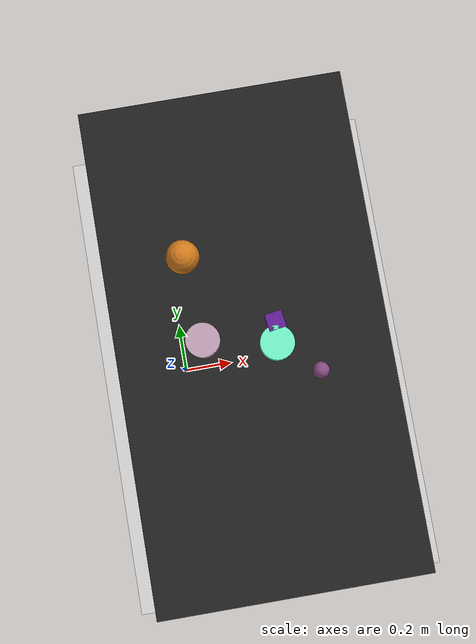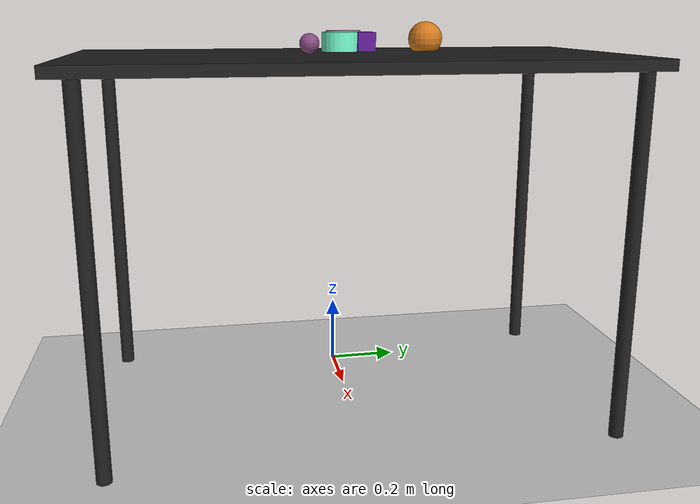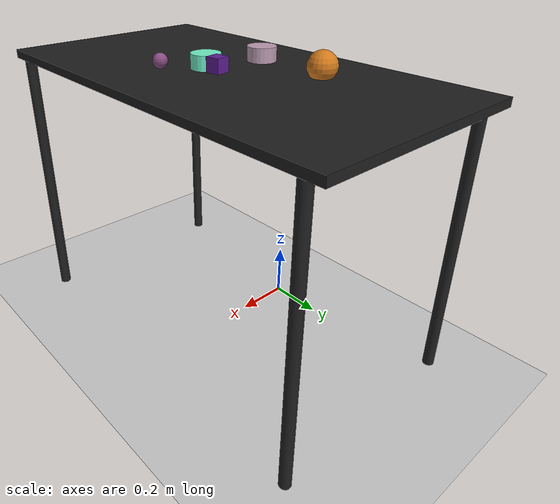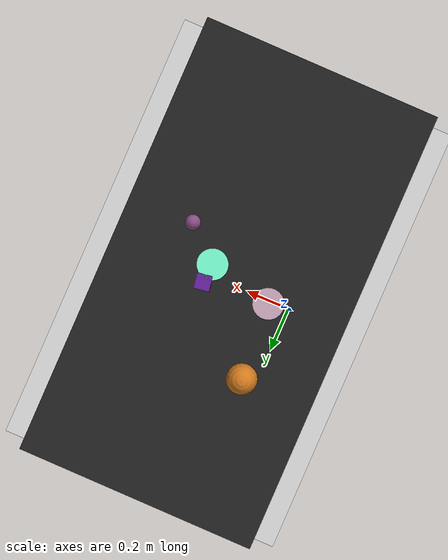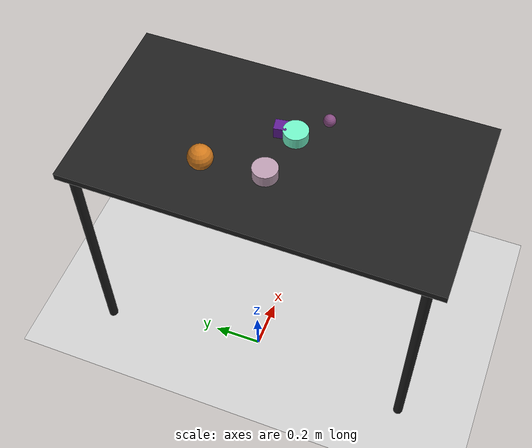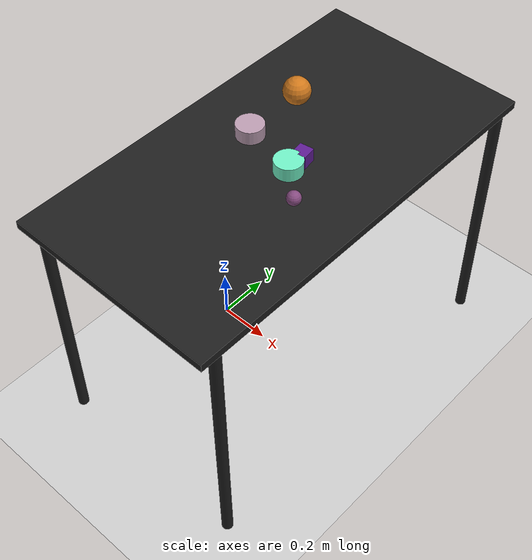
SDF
<?xml version="1.0" ?>
<sdf version="1.6">
  <world name="arm_world">
    <plugin filename="gz-sim-physics-system" name="gz::sim::systems::Physics">
      <engine>
        <filename>libgz-physics-bullet-featherstone-plugin.so</filename>
      </engine>
    </plugin>
    <plugin filename="gz-sim-user-commands-system" name="gz::sim::systems::UserCommands"/>
    <plugin filename="gz-sim-scene-broadcaster-system" name="gz::sim::systems::SceneBroadcaster"/>
    <plugin filename="gz-sim-sensors-system" name="gz::sim::systems::Sensors">
      <render_engine>ogre2</render_engine>
    </plugin>
    <gravity>0.0 0.0 -9.8</gravity>
    <scene>
      <shadows>false</shadows>
    </scene>
    <gui>
      <camera name="user_camera">
        <pose>0.75 -0.75 1.4 0 0.29 2.21</pose>
      </camera>
    </gui>
    <include>
      <uri>https://fuel.gazebosim.org/1.0/OpenRobotics/models/Sun</uri>
    </include>
    <model name="table">
      <static>true</static>
      <include>
        <uri>model://table</uri>
      </include>
      <pose>0.29 0 0 0 0 1.5708</pose>
    </model>
    <model name="ground_plane">
      <static>true</static>
      <link name="link">
        <collision name="collision">
          <geometry>
            <plane>
              <normal>0 0 1</normal>
            </plane>
          </geometry>
          <surface>
            <friction>
              <ode>
                <mu>1.0</mu>
                <mu2>1.0</mu2>
              </ode>
            </friction>
          </surface>
        </collision>
        <visual name="visual">
          <geometry>
            <plane>
              <normal>0 0 1</normal>
              <size>100 100</size>
            </plane>
          </geometry>
          <material>
            <ambient>0.8 0.8 0.8 1</ambient>
            <diffuse>0.8 0.8 0.8 1</diffuse>
            <specular>0.8 0.8 0.8 1</specular>
          </material>
        </visual>
      </link>
    </model>
    <model name="cube_m_0">
      <pose>0.364 0.029 1.05 0 0 0.15</pose>
      <link name="cube_m_0_link">
        <inertial>
          <mass>0.05</mass>
          <inertia>
            <ixx>2.04e-7</ixx>
            <iyy>2.04e-7</iyy>
            <izz>3.9e-8</izz>
            <ixy>0</ixy>
            <ixz>0</ixz>
            <iyz>0</iyz>
          </inertia>
        </inertial>
        <collision name="cube_m_0_collision">
          <geometry>
            <box>
              <size>0.05 0.05 0.05</size>
            </box>
          </geometry>
          <surface>
            <friction>
              <ode>
                <mu>0.8</mu>
                <mu2>0.8</mu2>
                <fdir1>0 0 1</fdir1>
                <slip1>0.001</slip1>
                <slip2>0.001</slip2>
              </ode>
              <torsional>
                <coefficient>0.1</coefficient>
                <surface_radius>0.015</surface_radius>
                <use_patch_radius>true</use_patch_radius>
              </torsional>
            </friction>
            <contact>
              <ode>
                <kp>1e5</kp>
                <kd>10</kd>
                <max_vel>0.1</max_vel>
                <min_depth>0.001</min_depth>
                <soft_cfm>0.01</soft_cfm>
                <soft_erp>0.2</soft_erp>
              </ode>
            </contact>
            <bounce>
              <restitution_coefficient>0.2</restitution_coefficient>
              <threshold>0.01</threshold>
            </bounce>
          </surface>
        </collision>
        <visual name="cube_m_0_visual">
          <geometry>
            <box>
              <size>0.05 0.05 0.05</size>
            </box>
          </geometry>
          <material>
            <ambient>0.37 0.11 0.58 1</ambient>
            <diffuse>0.37 0.11 0.58 1</diffuse>
          </material>
        </visual>
        <velocity_decay>
          <linear>1</linear>
          <angular>1</angular>
        </velocity_decay>
      </link>
    </model>
    <model name="sphere_m_1">
      <pose>0.469 -0.13 1.05 0 0 1.68</pose>
      <link name="sphere_m_1_link">
        <inertial>
          <mass>0.05</mass>
          <inertia>
            <ixx>2.04e-7</ixx>
            <iyy>2.04e-7</iyy>
            <izz>3.9e-8</izz>
            <ixy>0</ixy>
            <ixz>0</ixz>
            <iyz>0</iyz>
          </inertia>
        </inertial>
        <collision name="sphere_m_1_collision">
          <geometry>
            <sphere>
              <radius>0.025</radius>
            </sphere>
          </geometry>
          <surface>
            <friction>
              <ode>
                <mu>0.8</mu>
                <mu2>0.8</mu2>
                <fdir1>0 0 1</fdir1>
                <slip1>0.001</slip1>
                <slip2>0.001</slip2>
              </ode>
              <torsional>
                <coefficient>0.1</coefficient>
                <surface_radius>0.015</surface_radius>
                <use_patch_radius>true</use_patch_radius>
              </torsional>
            </friction>
            <contact>
              <ode>
                <kp>1e5</kp>
                <kd>10</kd>
                <max_vel>0.1</max_vel>
                <min_depth>0.001</min_depth>
                <soft_cfm>0.01</soft_cfm>
                <soft_erp>0.2</soft_erp>
              </ode>
            </contact>
            <bounce>
              <restitution_coefficient>0.2</restitution_coefficient>
              <threshold>0.01</threshold>
            </bounce>
          </surface>
        </collision>
        <visual name="sphere_m_1_visual">
          <geometry>
            <sphere>
              <radius>0.025</radius>
            </sphere>
          </geometry>
          <material>
            <ambient>0.52 0.29 0.5 1</ambient>
            <diffuse>0.52 0.29 0.5 1</diffuse>
          </material>
        </visual>
        <velocity_decay>
          <linear>1</linear>
          <angular>1</angular>
        </velocity_decay>
      </link>
    </model>
    <model name="cylinder_l_2">
      <pose>0.151 0.01 1.05 0 0 4.13</pose>
      <link name="cylinder_l_2_link">
        <inertial>
          <mass>0.05</mass>
          <inertia>
            <ixx>2.04e-7</ixx>
            <iyy>2.04e-7</iyy>
            <izz>3.9e-8</izz>
            <ixy>0</ixy>
            <ixz>0</ixz>
            <iyz>0</iyz>
          </inertia>
        </inertial>
        <collision name="cylinder_l_2_collision">
          <geometry>
            <cylinder>
              <radius>0.05</radius>
              <length>0.05</length>
            </cylinder>
          </geometry>
          <surface>
            <friction>
              <ode>
                <mu>0.8</mu>
                <mu2>0.8</mu2>
                <fdir1>0 0 1</fdir1>
                <slip1>0.001</slip1>
                <slip2>0.001</slip2>
              </ode>
              <torsional>
                <coefficient>0.1</coefficient>
                <surface_radius>0.015</surface_radius>
                <use_patch_radius>true</use_patch_radius>
              </torsional>
            </friction>
            <contact>
              <ode>
                <kp>1e5</kp>
                <kd>10</kd>
                <max_vel>0.1</max_vel>
                <min_depth>0.001</min_depth>
                <soft_cfm>0.01</soft_cfm>
                <soft_erp>0.2</soft_erp>
              </ode>
            </contact>
            <bounce>
              <restitution_coefficient>0.2</restitution_coefficient>
              <threshold>0.01</threshold>
            </bounce>
          </surface>
        </collision>
        <visual name="cylinder_l_2_visual">
          <geometry>
            <cylinder>
              <radius>0.05</radius>
              <length>0.05</length>
            </cylinder>
          </geometry>
          <material>
            <ambient>0.73 0.61 0.69 1</ambient>
            <diffuse>0.73 0.61 0.69 1</diffuse>
          </material>
        </visual>
        <velocity_decay>
          <linear>1</linear>
          <angular>1</angular>
        </velocity_decay>
      </link>
    </model>
    <model name="cylinder_l_3">
      <pose>0.359 -0.033 1.05 0 0 1.66</pose>
      <link name="cylinder_l_3_link">
        <inertial>
          <mass>0.05</mass>
          <inertia>
            <ixx>2.04e-7</ixx>
            <iyy>2.04e-7</iyy>
            <izz>3.9e-8</izz>
            <ixy>0</ixy>
            <ixz>0</ixz>
            <iyz>0</iyz>
          </inertia>
        </inertial>
        <collision name="cylinder_l_3_collision">
          <geometry>
            <cylinder>
              <radius>0.05</radius>
              <length>0.05</length>
            </cylinder>
          </geometry>
          <surface>
            <friction>
              <ode>
                <mu>0.8</mu>
                <mu2>0.8</mu2>
                <fdir1>0 0 1</fdir1>
                <slip1>0.001</slip1>
                <slip2>0.001</slip2>
              </ode>
              <torsional>
                <coefficient>0.1</coefficient>
                <surface_radius>0.015</surface_radius>
                <use_patch_radius>true</use_patch_radius>
              </torsional>
            </friction>
            <contact>
              <ode>
                <kp>1e5</kp>
                <kd>10</kd>
                <max_vel>0.1</max_vel>
                <min_depth>0.001</min_depth>
                <soft_cfm>0.01</soft_cfm>
                <soft_erp>0.2</soft_erp>
              </ode>
            </contact>
            <bounce>
              <restitution_coefficient>0.2</restitution_coefficient>
              <threshold>0.01</threshold>
            </bounce>
          </surface>
        </collision>
        <visual name="cylinder_l_3_visual">
          <geometry>
            <cylinder>
              <radius>0.05</radius>
              <length>0.05</length>
            </cylinder>
          </geometry>
          <material>
            <ambient>0.44 0.94 0.77 1</ambient>
            <diffuse>0.44 0.94 0.77 1</diffuse>
          </material>
        </visual>
        <velocity_decay>
          <linear>1</linear>
          <angular>1</angular>
        </velocity_decay>
      </link>
    </model>
    <model name="sphere_l_4">
      <pose>0.132 0.26 1.05 0 0 0.08</pose>
      <link name="sphere_l_4_link">
        <inertial>
          <mass>0.05</mass>
          <inertia>
            <ixx>2.04e-7</ixx>
            <iyy>2.04e-7</iyy>
            <izz>3.9e-8</izz>
            <ixy>0</ixy>
            <ixz>0</ixz>
            <iyz>0</iyz>
          </inertia>
        </inertial>
        <collision name="sphere_l_4_collision">
          <geometry>
            <sphere>
              <radius>0.05</radius>
            </sphere>
          </geometry>
          <surface>
            <friction>
              <ode>
                <mu>0.8</mu>
                <mu2>0.8</mu2>
                <fdir1>0 0 1</fdir1>
                <slip1>0.001</slip1>
                <slip2>0.001</slip2>
              </ode>
              <torsional>
                <coefficient>0.1</coefficient>
                <surface_radius>0.015</surface_radius>
                <use_patch_radius>true</use_patch_radius>
              </torsional>
            </friction>
            <contact>
              <ode>
                <kp>1e5</kp>
                <kd>10</kd>
                <max_vel>0.1</max_vel>
                <min_depth>0.001</min_depth>
                <soft_cfm>0.01</soft_cfm>
                <soft_erp>0.2</soft_erp>
              </ode>
            </contact>
            <bounce>
              <restitution_coefficient>0.2</restitution_coefficient>
              <threshold>0.01</threshold>
            </bounce>
          </surface>
        </collision>
        <visual name="sphere_l_4_visual">
          <geometry>
            <sphere>
              <radius>0.05</radius>
            </sphere>
          </geometry>
          <material>
            <ambient>0.81 0.47 0.11 1</ambient>
            <diffuse>0.81 0.47 0.11 1</diffuse>
          </material>
        </visual>
        <velocity_decay>
          <linear>1</linear>
          <angular>1</angular>
        </velocity_decay>
      </link>
    </model>
  </world>
</sdf>

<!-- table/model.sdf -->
<sdf version="1.5">
  <model name="table">
    <static>true</static>
    <link name="link">
      <collision name="surface">
        <pose>0 0 1.0 0 0 0</pose>
        <geometry>
          <box>
            <size>1.5 0.8 0.03</size>
          </box>
        </geometry>
        <surface>
          <friction>
            <ode>
              <mu>0.6</mu>
              <mu2>0.6</mu2>
            </ode>
          </friction>
        </surface>
      </collision>
      <visual name="surface">
        <pose>0 0 1.0 0 0 0</pose>
        <geometry>
          <box>
            <size>1.5 0.8 0.03</size>
          </box>
        </geometry>
        <material>
          <script>
            <uri>file://media/materials/scripts/gazebo.material</uri>
            <name>Gazebo/Black</name>
          </script>
        </material>
      </visual>
      <collision name="front_left_leg">
        <pose>0.68 0.38 0.5 0 0 0</pose>
        <geometry>
          <cylinder>
            <radius>0.02</radius>
            <length>1.0</length>
          </cylinder>
        </geometry>
      </collision>
      <visual name="front_left_leg">
        <pose>0.68 0.38 0.5 0 0 0</pose>
        <geometry>
          <cylinder>
            <radius>0.02</radius>
            <length>1.0</length>
          </cylinder>
        </geometry>
        <material>
          <script>
            <uri>file://media/materials/scripts/gazebo.material</uri>
            <name>Gazebo/Black</name>
          </script>
        </material>
      </visual>
      <collision name="front_right_leg">
        <pose>0.68 -0.38 0.5 0 0 0</pose>
        <geometry>
          <cylinder>
            <radius>0.02</radius>
            <length>1.0</length>
          </cylinder>
        </geometry>
      </collision>
      <visual name="front_right_leg">
        <pose>0.68 -0.38 0.5 0 0 0</pose>
        <geometry>
          <cylinder>
            <radius>0.02</radius>
            <length>1.0</length>
          </cylinder>
        </geometry>
        <material>
          <script>
            <uri>file://media/materials/scripts/gazebo.material</uri>
            <name>Gazebo/Black</name>
          </script>
        </material>
      </visual>
      <collision name="back_right_leg">
        <pose>-0.68 -0.38 0.5 0 0 0</pose>
        <geometry>
          <cylinder>
            <radius>0.02</radius>
            <length>1.0</length>
          </cylinder>
        </geometry>
      </collision>
      <visual name="back_right_leg">
        <pose>-0.68 -0.38 0.5 0 0 0</pose>
        <geometry>
          <cylinder>
            <radius>0.02</radius>
            <length>1.0</length>
          </cylinder>
        </geometry>
        <material>
          <script>
            <uri>file://media/materials/scripts/gazebo.material</uri>
            <name>Gazebo/Black</name>
          </script>
        </material>
      </visual>
      <collision name="back_left_leg">
        <pose>-0.68 0.38 0.5 0 0 0</pose>
        <geometry>
          <cylinder>
            <radius>0.02</radius>
            <length>1.0</length>
          </cylinder>
        </geometry>
      </collision>
      <visual name="back_left_leg">
        <pose>-0.68 0.38 0.5 0 0 0</pose>
        <geometry>
          <cylinder>
            <radius>0.02</radius>
            <length>1.0</length>
          </cylinder>
        </geometry>
        <material>
          <script>
            <uri>file://media/materials/scripts/gazebo.material</uri>
            <name>Gazebo/Black</name>
          </script>
        </material>
      </visual>
    </link>
  </model>
</sdf>
